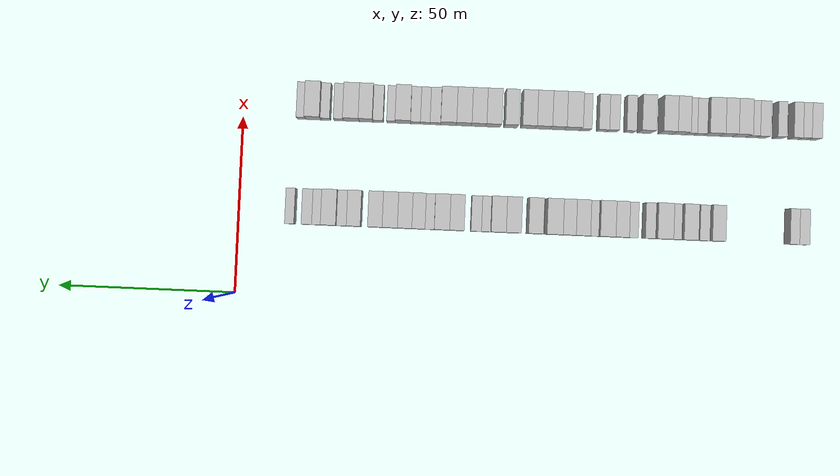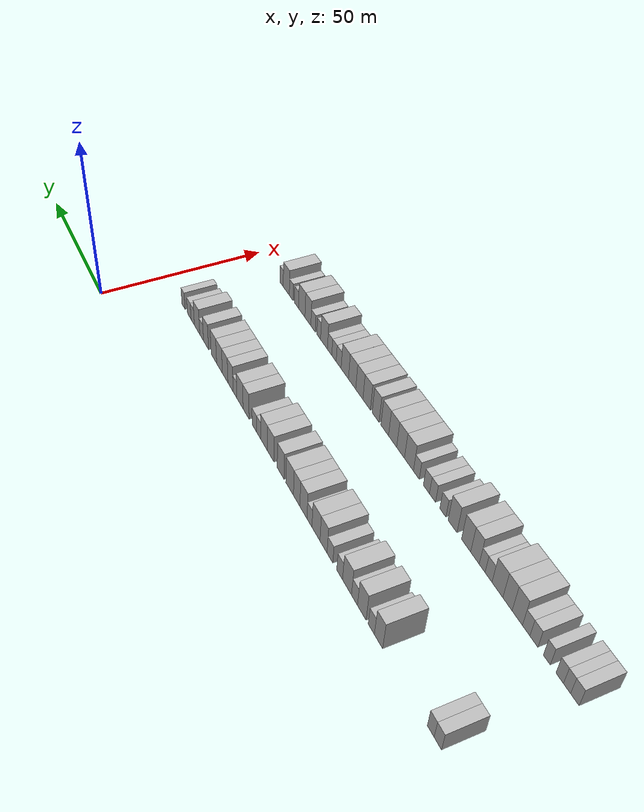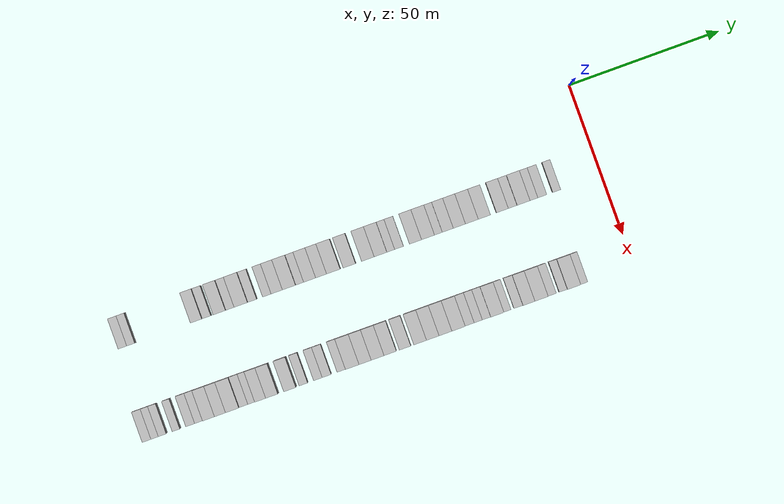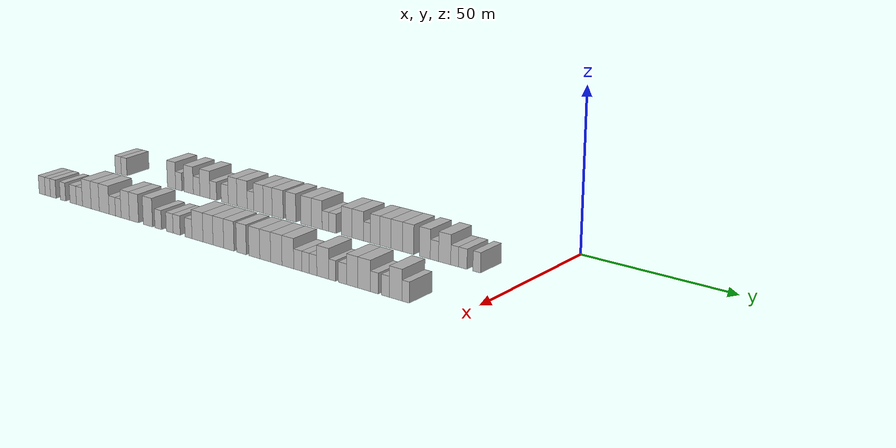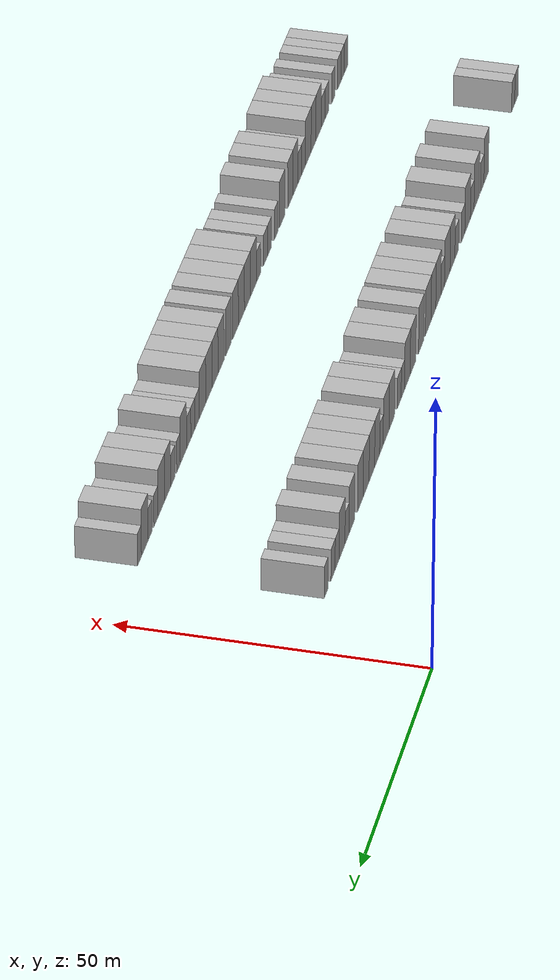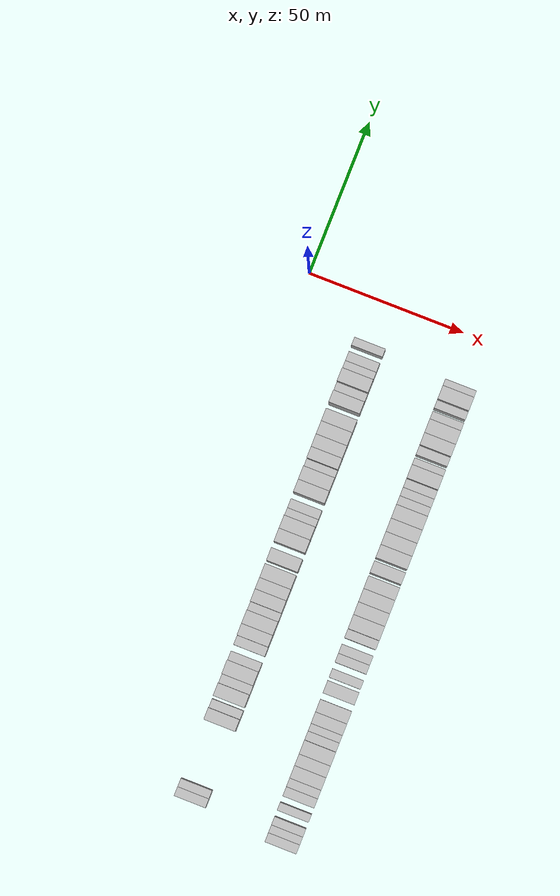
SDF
<sdf version="1.6">
 <world name="default">
  <model name="building_66">
   <static>1</static>
   <pose>25.0000 -159.3596 0 0.000000 0.000000 0.000000</pose>
   <link name="link">
    <pose>0 0 3.00 0 0 0</pose>
    <collision name="collision"><geometry><box><size>10.0000 2.8580 6.0000</size></box></geometry></collision>
    <visual name="visual">
     <cast_shadows>0</cast_shadows>
     <geometry><box><size>10.0000 2.8580 6.0000</size></box></geometry>
     <material>
      <script>
       <uri>model://HANNAS_wall/materials/scripts</uri>
       <uri>model://HANNAS_wall/materials/textures</uri>
       <name>vrc/HANNAS_wall</name>
      </script>
     </material>
    </visual>
   </link>
  </model>
  <model name="building_67">
   <static>1</static>
   <pose>25.0000 -156.6166 0 0.000000 0.000000 0.000000</pose>
   <link name="link">
    <pose>0 0 3.00 0 0 0</pose>
    <collision name="collision"><geometry><box><size>10.0000 2.6280 6.0000</size></box></geometry></collision>
    <visual name="visual">
     <cast_shadows>0</cast_shadows>
     <geometry><box><size>10.0000 2.6280 6.0000</size></box></geometry>
     <material>
      <script>
       <uri>model://HANNAS_wall/materials/scripts</uri>
       <uri>model://HANNAS_wall/materials/textures</uri>
       <name>vrc/HANNAS_wall</name>
      </script>
     </material>
    </visual>
   </link>
  </model>
  <model name="building_68">
   <static>1</static>
   <pose>25.0000 -134.7074 0 0.000000 0.000000 0.000000</pose>
   <link name="link">
    <pose>0 0 4.50 0 0 0</pose>
    <collision name="collision"><geometry><box><size>10.0000 3.7301 9.0000</size></box></geometry></collision>
    <visual name="visual">
     <cast_shadows>0</cast_shadows>
     <geometry><box><size>10.0000 3.7301 9.0000</size></box></geometry>
     <material>
      <script>
       <uri>model://HANNAS_wall/materials/scripts</uri>
       <uri>model://HANNAS_wall/materials/textures</uri>
       <name>vrc/HANNAS_wall</name>
      </script>
     </material>
    </visual>
   </link>
  </model>
  <model name="building_69">
   <static>1</static>
   <pose>25.0000 -131.4486 0 0.000000 0.000000 0.000000</pose>
   <link name="link">
    <pose>0 0 3.00 0 0 0</pose>
    <collision name="collision"><geometry><box><size>10.0000 2.7873 6.0000</size></box></geometry></collision>
    <visual name="visual">
     <cast_shadows>0</cast_shadows>
     <geometry><box><size>10.0000 2.7873 6.0000</size></box></geometry>
     <material>
      <script>
       <uri>model://HANNAS_wall/materials/scripts</uri>
       <uri>model://HANNAS_wall/materials/textures</uri>
       <name>vrc/HANNAS_wall</name>
      </script>
     </material>
    </visual>
   </link>
  </model>
  <model name="building_70">
   <static>1</static>
   <pose>25.0000 -127.0258 0 0.000000 0.000000 0.000000</pose>
   <link name="link">
    <pose>0 0 4.50 0 0 0</pose>
    <collision name="collision"><geometry><box><size>10.0000 4.0583 9.0000</size></box></geometry></collision>
    <visual name="visual">
     <cast_shadows>0</cast_shadows>
     <geometry><box><size>10.0000 4.0583 9.0000</size></box></geometry>
     <material>
      <script>
       <uri>model://HANNAS_wall/materials/scripts</uri>
       <uri>model://HANNAS_wall/materials/textures</uri>
       <name>vrc/HANNAS_wall</name>
      </script>
     </material>
    </visual>
   </link>
  </model>
  <model name="building_71">
   <static>1</static>
   <pose>25.0000 -123.5500 0 0.000000 0.000000 0.000000</pose>
   <link name="link">
    <pose>0 0 3.00 0 0 0</pose>
    <collision name="collision"><geometry><box><size>10.0000 2.8934 6.0000</size></box></geometry></collision>
    <visual name="visual">
     <cast_shadows>0</cast_shadows>
     <geometry><box><size>10.0000 2.8934 6.0000</size></box></geometry>
     <material>
      <script>
       <uri>model://HANNAS_wall/materials/scripts</uri>
       <uri>model://HANNAS_wall/materials/textures</uri>
       <name>vrc/HANNAS_wall</name>
      </script>
     </material>
    </visual>
   </link>
  </model>
  <model name="building_72">
   <static>1</static>
   <pose>25.0000 -119.9014 0 0.000000 0.000000 0.000000</pose>
   <link name="link">
    <pose>0 0 4.50 0 0 0</pose>
    <collision name="collision"><geometry><box><size>10.0000 4.4038 9.0000</size></box></geometry></collision>
    <visual name="visual">
     <cast_shadows>0</cast_shadows>
     <geometry><box><size>10.0000 4.4038 9.0000</size></box></geometry>
     <material>
      <script>
       <uri>model://HANNAS_wall/materials/scripts</uri>
       <uri>model://HANNAS_wall/materials/textures</uri>
       <name>vrc/HANNAS_wall</name>
      </script>
     </material>
    </visual>
   </link>
  </model>
  <model name="building_73">
   <static>1</static>
   <pose>25.0000 -116.2628 0 0.000000 0.000000 0.000000</pose>
   <link name="link">
    <pose>0 0 3.00 0 0 0</pose>
    <collision name="collision"><geometry><box><size>10.0000 2.8733 6.0000</size></box></geometry></collision>
    <visual name="visual">
     <cast_shadows>0</cast_shadows>
     <geometry><box><size>10.0000 2.8733 6.0000</size></box></geometry>
     <material>
      <script>
       <uri>model://HANNAS_wall/materials/scripts</uri>
       <uri>model://HANNAS_wall/materials/textures</uri>
       <name>vrc/HANNAS_wall</name>
      </script>
     </material>
    </visual>
   </link>
  </model>
  <model name="building_74">
   <static>1</static>
   <pose>25.0000 -111.3329 0 0.000000 0.000000 0.000000</pose>
   <link name="link">
    <pose>0 0 3.00 0 0 0</pose>
    <collision name="collision"><geometry><box><size>10.0000 2.9865 6.0000</size></box></geometry></collision>
    <visual name="visual">
     <cast_shadows>0</cast_shadows>
     <geometry><box><size>10.0000 2.9865 6.0000</size></box></geometry>
     <material>
      <script>
       <uri>model://HANNAS_wall/materials/scripts</uri>
       <uri>model://HANNAS_wall/materials/textures</uri>
       <name>vrc/HANNAS_wall</name>
      </script>
     </material>
    </visual>
   </link>
  </model>
  <model name="building_75">
   <static>1</static>
   <pose>25.0000 -107.9722 0 0.000000 0.000000 0.000000</pose>
   <link name="link">
    <pose>0 0 4.50 0 0 0</pose>
    <collision name="collision"><geometry><box><size>10.0000 3.7350 9.0000</size></box></geometry></collision>
    <visual name="visual">
     <cast_shadows>0</cast_shadows>
     <geometry><box><size>10.0000 3.7350 9.0000</size></box></geometry>
     <material>
      <script>
       <uri>model://HANNAS_wall/materials/scripts</uri>
       <uri>model://HANNAS_wall/materials/textures</uri>
       <name>vrc/HANNAS_wall</name>
      </script>
     </material>
    </visual>
   </link>
  </model>
  <model name="building_76">
   <static>1</static>
   <pose>25.0000 -103.9499 0 0.000000 0.000000 0.000000</pose>
   <link name="link">
    <pose>0 0 4.50 0 0 0</pose>
    <collision name="collision"><geometry><box><size>10.0000 4.3096 9.0000</size></box></geometry></collision>
    <visual name="visual">
     <cast_shadows>0</cast_shadows>
     <geometry><box><size>10.0000 4.3096 9.0000</size></box></geometry>
     <material>
      <script>
       <uri>model://HANNAS_wall/materials/scripts</uri>
       <uri>model://HANNAS_wall/materials/textures</uri>
       <name>vrc/HANNAS_wall</name>
      </script>
     </material>
    </visual>
   </link>
  </model>
  <model name="building_77">
   <static>1</static>
   <pose>25.0000 -100.4356 0 0.000000 0.000000 0.000000</pose>
   <link name="link">
    <pose>0 0 3.00 0 0 0</pose>
    <collision name="collision"><geometry><box><size>10.0000 2.7190 6.0000</size></box></geometry></collision>
    <visual name="visual">
     <cast_shadows>0</cast_shadows>
     <geometry><box><size>10.0000 2.7190 6.0000</size></box></geometry>
     <material>
      <script>
       <uri>model://HANNAS_wall/materials/scripts</uri>
       <uri>model://HANNAS_wall/materials/textures</uri>
       <name>vrc/HANNAS_wall</name>
      </script>
     </material>
    </visual>
   </link>
  </model>
  <model name="building_78">
   <static>1</static>
   <pose>25.0000 -97.0881 0 0.000000 0.000000 0.000000</pose>
   <link name="link">
    <pose>0 0 4.50 0 0 0</pose>
    <collision name="collision"><geometry><box><size>10.0000 3.9760 9.0000</size></box></geometry></collision>
    <visual name="visual">
     <cast_shadows>0</cast_shadows>
     <geometry><box><size>10.0000 3.9760 9.0000</size></box></geometry>
     <material>
      <script>
       <uri>model://HANNAS_wall/materials/scripts</uri>
       <uri>model://HANNAS_wall/materials/textures</uri>
       <name>vrc/HANNAS_wall</name>
      </script>
     </material>
    </visual>
   </link>
  </model>
  <model name="building_79">
   <static>1</static>
   <pose>25.0000 -93.2928 0 0.000000 0.000000 0.000000</pose>
   <link name="link">
    <pose>0 0 4.50 0 0 0</pose>
    <collision name="collision"><geometry><box><size>10.0000 3.6146 9.0000</size></box></geometry></collision>
    <visual name="visual">
     <cast_shadows>0</cast_shadows>
     <geometry><box><size>10.0000 3.6146 9.0000</size></box></geometry>
     <material>
      <script>
       <uri>model://HANNAS_wall/materials/scripts</uri>
       <uri>model://HANNAS_wall/materials/textures</uri>
       <name>vrc/HANNAS_wall</name>
      </script>
     </material>
    </visual>
   </link>
  </model>
  <model name="building_80">
   <static>1</static>
   <pose>25.0000 -89.2456 0 0.000000 0.000000 0.000000</pose>
   <link name="link">
    <pose>0 0 4.50 0 0 0</pose>
    <collision name="collision"><geometry><box><size>10.0000 4.4797 9.0000</size></box></geometry></collision>
    <visual name="visual">
     <cast_shadows>0</cast_shadows>
     <geometry><box><size>10.0000 4.4797 9.0000</size></box></geometry>
     <material>
      <script>
       <uri>model://HANNAS_wall/materials/scripts</uri>
       <uri>model://HANNAS_wall/materials/textures</uri>
       <name>vrc/HANNAS_wall</name>
      </script>
     </material>
    </visual>
   </link>
  </model>
  <model name="building_81">
   <static>1</static>
   <pose>25.0000 -83.9541 0 0.000000 0.000000 0.000000</pose>
   <link name="link">
    <pose>0 0 4.50 0 0 0</pose>
    <collision name="collision"><geometry><box><size>10.0000 4.1032 9.0000</size></box></geometry></collision>
    <visual name="visual">
     <cast_shadows>0</cast_shadows>
     <geometry><box><size>10.0000 4.1032 9.0000</size></box></geometry>
     <material>
      <script>
       <uri>model://HANNAS_wall/materials/scripts</uri>
       <uri>model://HANNAS_wall/materials/textures</uri>
       <name>vrc/HANNAS_wall</name>
      </script>
     </material>
    </visual>
   </link>
  </model>
  <model name="building_82">
   <static>1</static>
   <pose>25.0000 -77.8062 0 0.000000 0.000000 0.000000</pose>
   <link name="link">
    <pose>0 0 4.50 0 0 0</pose>
    <collision name="collision"><geometry><box><size>10.0000 4.1927 9.0000</size></box></geometry></collision>
    <visual name="visual">
     <cast_shadows>0</cast_shadows>
     <geometry><box><size>10.0000 4.1927 9.0000</size></box></geometry>
     <material>
      <script>
       <uri>model://HANNAS_wall/materials/scripts</uri>
       <uri>model://HANNAS_wall/materials/textures</uri>
       <name>vrc/HANNAS_wall</name>
      </script>
     </material>
    </visual>
   </link>
  </model>
  <model name="building_83">
   <static>1</static>
   <pose>25.0000 -73.6190 0 0.000000 0.000000 0.000000</pose>
   <link name="link">
    <pose>0 0 4.50 0 0 0</pose>
    <collision name="collision"><geometry><box><size>10.0000 4.1817 9.0000</size></box></geometry></collision>
    <visual name="visual">
     <cast_shadows>0</cast_shadows>
     <geometry><box><size>10.0000 4.1817 9.0000</size></box></geometry>
     <material>
      <script>
       <uri>model://HANNAS_wall/materials/scripts</uri>
       <uri>model://HANNAS_wall/materials/textures</uri>
       <name>vrc/HANNAS_wall</name>
      </script>
     </material>
    </visual>
   </link>
  </model>
  <model name="building_84">
   <static>1</static>
   <pose>25.0000 -70.2472 0 0.000000 0.000000 0.000000</pose>
   <link name="link">
    <pose>0 0 3.00 0 0 0</pose>
    <collision name="collision"><geometry><box><size>10.0000 2.5617 6.0000</size></box></geometry></collision>
    <visual name="visual">
     <cast_shadows>0</cast_shadows>
     <geometry><box><size>10.0000 2.5617 6.0000</size></box></geometry>
     <material>
      <script>
       <uri>model://HANNAS_wall/materials/scripts</uri>
       <uri>model://HANNAS_wall/materials/textures</uri>
       <name>vrc/HANNAS_wall</name>
      </script>
     </material>
    </visual>
   </link>
  </model>
  <model name="building_85">
   <static>1</static>
   <pose>25.0000 -67.5043 0 0.000000 0.000000 0.000000</pose>
   <link name="link">
    <pose>0 0 3.00 0 0 0</pose>
    <collision name="collision"><geometry><box><size>10.0000 2.9242 6.0000</size></box></geometry></collision>
    <visual name="visual">
     <cast_shadows>0</cast_shadows>
     <geometry><box><size>10.0000 2.9242 6.0000</size></box></geometry>
     <material>
      <script>
       <uri>model://HANNAS_wall/materials/scripts</uri>
       <uri>model://HANNAS_wall/materials/textures</uri>
       <name>vrc/HANNAS_wall</name>
      </script>
     </material>
    </visual>
   </link>
  </model>
  <model name="building_86">
   <static>1</static>
   <pose>25.0000 -62.0273 0 0.000000 0.000000 0.000000</pose>
   <link name="link">
    <pose>0 0 4.50 0 0 0</pose>
    <collision name="collision"><geometry><box><size>10.0000 4.0299 9.0000</size></box></geometry></collision>
    <visual name="visual">
     <cast_shadows>0</cast_shadows>
     <geometry><box><size>10.0000 4.0299 9.0000</size></box></geometry>
     <material>
      <script>
       <uri>model://HANNAS_wall/materials/scripts</uri>
       <uri>model://HANNAS_wall/materials/textures</uri>
       <name>vrc/HANNAS_wall</name>
      </script>
     </material>
    </visual>
   </link>
  </model>
  <model name="building_87">
   <static>1</static>
   <pose>25.0000 -57.8725 0 0.000000 0.000000 0.000000</pose>
   <link name="link">
    <pose>0 0 4.50 0 0 0</pose>
    <collision name="collision"><geometry><box><size>10.0000 4.2796 9.0000</size></box></geometry></collision>
    <visual name="visual">
     <cast_shadows>0</cast_shadows>
     <geometry><box><size>10.0000 4.2796 9.0000</size></box></geometry>
     <material>
      <script>
       <uri>model://HANNAS_wall/materials/scripts</uri>
       <uri>model://HANNAS_wall/materials/textures</uri>
       <name>vrc/HANNAS_wall</name>
      </script>
     </material>
    </visual>
   </link>
  </model>
  <model name="building_88">
   <static>1</static>
   <pose>25.0000 -54.4434 0 0.000000 0.000000 0.000000</pose>
   <link name="link">
    <pose>0 0 3.00 0 0 0</pose>
    <collision name="collision"><geometry><box><size>10.0000 2.5786 6.0000</size></box></geometry></collision>
    <visual name="visual">
     <cast_shadows>0</cast_shadows>
     <geometry><box><size>10.0000 2.5786 6.0000</size></box></geometry>
     <material>
      <script>
       <uri>model://HANNAS_wall/materials/scripts</uri>
       <uri>model://HANNAS_wall/materials/textures</uri>
       <name>vrc/HANNAS_wall</name>
      </script>
     </material>
    </visual>
   </link>
  </model>
  <model name="building_89">
   <static>1</static>
   <pose>25.0000 -51.3265 0 0.000000 0.000000 0.000000</pose>
   <link name="link">
    <pose>0 0 4.50 0 0 0</pose>
    <collision name="collision"><geometry><box><size>10.0000 3.6554 9.0000</size></box></geometry></collision>
    <visual name="visual">
     <cast_shadows>0</cast_shadows>
     <geometry><box><size>10.0000 3.6554 9.0000</size></box></geometry>
     <material>
      <script>
       <uri>model://HANNAS_wall/materials/scripts</uri>
       <uri>model://HANNAS_wall/materials/textures</uri>
       <name>vrc/HANNAS_wall</name>
      </script>
     </material>
    </visual>
   </link>
  </model>
  <model name="building_90">
   <static>1</static>
   <pose>25.0000 -47.4925 0 0.000000 0.000000 0.000000</pose>
   <link name="link">
    <pose>0 0 4.50 0 0 0</pose>
    <collision name="collision"><geometry><box><size>10.0000 4.0127 9.0000</size></box></geometry></collision>
    <visual name="visual">
     <cast_shadows>0</cast_shadows>
     <geometry><box><size>10.0000 4.0127 9.0000</size></box></geometry>
     <material>
      <script>
       <uri>model://HANNAS_wall/materials/scripts</uri>
       <uri>model://HANNAS_wall/materials/textures</uri>
       <name>vrc/HANNAS_wall</name>
      </script>
     </material>
    </visual>
   </link>
  </model>
  <model name="building_91">
   <static>1</static>
   <pose>25.0000 -43.3657 0 0.000000 0.000000 0.000000</pose>
   <link name="link">
    <pose>0 0 4.50 0 0 0</pose>
    <collision name="collision"><geometry><box><size>10.0000 4.2408 9.0000</size></box></geometry></collision>
    <visual name="visual">
     <cast_shadows>0</cast_shadows>
     <geometry><box><size>10.0000 4.2408 9.0000</size></box></geometry>
     <material>
      <script>
       <uri>model://HANNAS_wall/materials/scripts</uri>
       <uri>model://HANNAS_wall/materials/textures</uri>
       <name>vrc/HANNAS_wall</name>
      </script>
     </material>
    </visual>
   </link>
  </model>
  <model name="building_92">
   <static>1</static>
   <pose>25.0000 -39.2170 0 0.000000 0.000000 0.000000</pose>
   <link name="link">
    <pose>0 0 4.50 0 0 0</pose>
    <collision name="collision"><geometry><box><size>10.0000 4.0567 9.0000</size></box></geometry></collision>
    <visual name="visual">
     <cast_shadows>0</cast_shadows>
     <geometry><box><size>10.0000 4.0567 9.0000</size></box></geometry>
     <material>
      <script>
       <uri>model://HANNAS_wall/materials/scripts</uri>
       <uri>model://HANNAS_wall/materials/textures</uri>
       <name>vrc/HANNAS_wall</name>
      </script>
     </material>
    </visual>
   </link>
  </model>
  <model name="building_93">
   <static>1</static>
   <pose>25.0000 -33.2435 0 0.000000 0.000000 0.000000</pose>
   <link name="link">
    <pose>0 0 4.50 0 0 0</pose>
    <collision name="collision"><geometry><box><size>10.0000 3.8904 9.0000</size></box></geometry></collision>
    <visual name="visual">
     <cast_shadows>0</cast_shadows>
     <geometry><box><size>10.0000 3.8904 9.0000</size></box></geometry>
     <material>
      <script>
       <uri>model://HANNAS_wall/materials/scripts</uri>
       <uri>model://HANNAS_wall/materials/textures</uri>
       <name>vrc/HANNAS_wall</name>
      </script>
     </material>
    </visual>
   </link>
  </model>
  <model name="building_94">
   <static>1</static>
   <pose>25.0000 -29.8261 0 0.000000 0.000000 0.000000</pose>
   <link name="link">
    <pose>0 0 3.00 0 0 0</pose>
    <collision name="collision"><geometry><box><size>10.0000 2.9443 6.0000</size></box></geometry></collision>
    <visual name="visual">
     <cast_shadows>0</cast_shadows>
     <geometry><box><size>10.0000 2.9443 6.0000</size></box></geometry>
     <material>
      <script>
       <uri>model://HANNAS_wall/materials/scripts</uri>
       <uri>model://HANNAS_wall/materials/textures</uri>
       <name>vrc/HANNAS_wall</name>
      </script>
     </material>
    </visual>
   </link>
  </model>
  <model name="building_95">
   <static>1</static>
   <pose>25.0000 -26.2282 0 0.000000 0.000000 0.000000</pose>
   <link name="link">
    <pose>0 0 4.50 0 0 0</pose>
    <collision name="collision"><geometry><box><size>10.0000 4.2514 9.0000</size></box></geometry></collision>
    <visual name="visual">
     <cast_shadows>0</cast_shadows>
     <geometry><box><size>10.0000 4.2514 9.0000</size></box></geometry>
     <material>
      <script>
       <uri>model://HANNAS_wall/materials/scripts</uri>
       <uri>model://HANNAS_wall/materials/textures</uri>
       <name>vrc/HANNAS_wall</name>
      </script>
     </material>
    </visual>
   </link>
  </model>
  <model name="building_96">
   <static>1</static>
   <pose>25.0000 -22.7592 0 0.000000 0.000000 0.000000</pose>
   <link name="link">
    <pose>0 0 3.00 0 0 0</pose>
    <collision name="collision"><geometry><box><size>10.0000 2.6866 6.0000</size></box></geometry></collision>
    <visual name="visual">
     <cast_shadows>0</cast_shadows>
     <geometry><box><size>10.0000 2.6866 6.0000</size></box></geometry>
     <material>
      <script>
       <uri>model://HANNAS_wall/materials/scripts</uri>
       <uri>model://HANNAS_wall/materials/textures</uri>
       <name>vrc/HANNAS_wall</name>
      </script>
     </material>
    </visual>
   </link>
  </model>
  <model name="building_97">
   <static>1</static>
   <pose>25.0000 -19.9322 0 0.000000 0.000000 0.000000</pose>
   <link name="link">
    <pose>0 0 3.00 0 0 0</pose>
    <collision name="collision"><geometry><box><size>10.0000 2.9674 6.0000</size></box></geometry></collision>
    <visual name="visual">
     <cast_shadows>0</cast_shadows>
     <geometry><box><size>10.0000 2.9674 6.0000</size></box></geometry>
     <material>
      <script>
       <uri>model://HANNAS_wall/materials/scripts</uri>
       <uri>model://HANNAS_wall/materials/textures</uri>
       <name>vrc/HANNAS_wall</name>
      </script>
     </material>
    </visual>
   </link>
  </model>
  <model name="building_98">
   <static>1</static>
   <pose>25.0000 -15.1394 0 0.000000 0.000000 0.000000</pose>
   <link name="link">
    <pose>0 0 3.00 0 0 0</pose>
    <collision name="collision"><geometry><box><size>10.0000 2.6182 6.0000</size></box></geometry></collision>
    <visual name="visual">
     <cast_shadows>0</cast_shadows>
     <geometry><box><size>10.0000 2.6182 6.0000</size></box></geometry>
     <material>
      <script>
       <uri>model://HANNAS_wall/materials/scripts</uri>
       <uri>model://HANNAS_wall/materials/textures</uri>
       <name>vrc/HANNAS_wall</name>
      </script>
     </material>
    </visual>
   </link>
  </model>
  <model name="building_299">
   <static>1</static>
   <pose>55.0000 -162.1643 0 0.000000 0.000000 0.000000</pose>
   <link name="link">
    <pose>0 0 3.00 0 0 0</pose>
    <collision name="collision"><geometry><box><size>10.0000 2.8964 6.0000</size></box></geometry></collision>
    <visual name="visual">
     <cast_shadows>0</cast_shadows>
     <geometry><box><size>10.0000 2.8964 6.0000</size></box></geometry>
     <material>
      <script>
       <uri>model://HANNAS_wall/materials/scripts</uri>
       <uri>model://HANNAS_wall/materials/textures</uri>
       <name>vrc/HANNAS_wall</name>
      </script>
     </material>
    </visual>
   </link>
  </model>
  <model name="building_300">
   <static>1</static>
   <pose>55.0000 -159.4904 0 0.000000 0.000000 0.000000</pose>
   <link name="link">
    <pose>0 0 3.00 0 0 0</pose>
    <collision name="collision"><geometry><box><size>10.0000 2.4514 6.0000</size></box></geometry></collision>
    <visual name="visual">
     <cast_shadows>0</cast_shadows>
     <geometry><box><size>10.0000 2.4514 6.0000</size></box></geometry>
     <material>
      <script>
       <uri>model://HANNAS_wall/materials/scripts</uri>
       <uri>model://HANNAS_wall/materials/textures</uri>
       <name>vrc/HANNAS_wall</name>
      </script>
     </material>
    </visual>
   </link>
  </model>
  <model name="building_301">
   <static>1</static>
   <pose>55.0000 -156.9581 0 0.000000 0.000000 0.000000</pose>
   <link name="link">
    <pose>0 0 3.00 0 0 0</pose>
    <collision name="collision"><geometry><box><size>10.0000 2.6132 6.0000</size></box></geometry></collision>
    <visual name="visual">
     <cast_shadows>0</cast_shadows>
     <geometry><box><size>10.0000 2.6132 6.0000</size></box></geometry>
     <material>
      <script>
       <uri>model://HANNAS_wall/materials/scripts</uri>
       <uri>model://HANNAS_wall/materials/textures</uri>
       <name>vrc/HANNAS_wall</name>
      </script>
     </material>
    </visual>
   </link>
  </model>
  <model name="building_302">
   <static>1</static>
   <pose>55.0000 -152.3976 0 0.000000 0.000000 0.000000</pose>
   <link name="link">
    <pose>0 0 3.00 0 0 0</pose>
    <collision name="collision"><geometry><box><size>10.0000 2.5078 6.0000</size></box></geometry></collision>
    <visual name="visual">
     <cast_shadows>0</cast_shadows>
     <geometry><box><size>10.0000 2.5078 6.0000</size></box></geometry>
     <material>
      <script>
       <uri>model://HANNAS_wall/materials/scripts</uri>
       <uri>model://HANNAS_wall/materials/textures</uri>
       <name>vrc/HANNAS_wall</name>
      </script>
     </material>
    </visual>
   </link>
  </model>
  <model name="building_303">
   <static>1</static>
   <pose>55.0000 -147.6664 0 0.000000 0.000000 0.000000</pose>
   <link name="link">
    <pose>0 0 3.00 0 0 0</pose>
    <collision name="collision"><geometry><box><size>10.0000 2.9547 6.0000</size></box></geometry></collision>
    <visual name="visual">
     <cast_shadows>0</cast_shadows>
     <geometry><box><size>10.0000 2.9547 6.0000</size></box></geometry>
     <material>
      <script>
       <uri>model://HANNAS_wall/materials/scripts</uri>
       <uri>model://HANNAS_wall/materials/textures</uri>
       <name>vrc/HANNAS_wall</name>
      </script>
     </material>
    </visual>
   </link>
  </model>
  <model name="building_304">
   <static>1</static>
   <pose>55.0000 -144.7800 0 0.000000 0.000000 0.000000</pose>
   <link name="link">
    <pose>0 0 3.00 0 0 0</pose>
    <collision name="collision"><geometry><box><size>10.0000 2.8181 6.0000</size></box></geometry></collision>
    <visual name="visual">
     <cast_shadows>0</cast_shadows>
     <geometry><box><size>10.0000 2.8181 6.0000</size></box></geometry>
     <material>
      <script>
       <uri>model://HANNAS_wall/materials/scripts</uri>
       <uri>model://HANNAS_wall/materials/textures</uri>
       <name>vrc/HANNAS_wall</name>
      </script>
     </material>
    </visual>
   </link>
  </model>
  <model name="building_305">
   <static>1</static>
   <pose>55.0000 -141.3882 0 0.000000 0.000000 0.000000</pose>
   <link name="link">
    <pose>0 0 4.50 0 0 0</pose>
    <collision name="collision"><geometry><box><size>10.0000 3.9655 9.0000</size></box></geometry></collision>
    <visual name="visual">
     <cast_shadows>0</cast_shadows>
     <geometry><box><size>10.0000 3.9655 9.0000</size></box></geometry>
     <material>
      <script>
       <uri>model://HANNAS_wall/materials/scripts</uri>
       <uri>model://HANNAS_wall/materials/textures</uri>
       <name>vrc/HANNAS_wall</name>
      </script>
     </material>
    </visual>
   </link>
  </model>
  <model name="building_306">
   <static>1</static>
   <pose>55.0000 -137.5795 0 0.000000 0.000000 0.000000</pose>
   <link name="link">
    <pose>0 0 4.50 0 0 0</pose>
    <collision name="collision"><geometry><box><size>10.0000 3.6520 9.0000</size></box></geometry></collision>
    <visual name="visual">
     <cast_shadows>0</cast_shadows>
     <geometry><box><size>10.0000 3.6520 9.0000</size></box></geometry>
     <material>
      <script>
       <uri>model://HANNAS_wall/materials/scripts</uri>
       <uri>model://HANNAS_wall/materials/textures</uri>
       <name>vrc/HANNAS_wall</name>
      </script>
     </material>
    </visual>
   </link>
  </model>
  <model name="building_307">
   <static>1</static>
   <pose>55.0000 -133.5691 0 0.000000 0.000000 0.000000</pose>
   <link name="link">
    <pose>0 0 4.50 0 0 0</pose>
    <collision name="collision"><geometry><box><size>10.0000 4.3687 9.0000</size></box></geometry></collision>
    <visual name="visual">
     <cast_shadows>0</cast_shadows>
     <geometry><box><size>10.0000 4.3687 9.0000</size></box></geometry>
     <material>
      <script>
       <uri>model://HANNAS_wall/materials/scripts</uri>
       <uri>model://HANNAS_wall/materials/textures</uri>
       <name>vrc/HANNAS_wall</name>
      </script>
     </material>
    </visual>
   </link>
  </model>
  <model name="building_308">
   <static>1</static>
   <pose>55.0000 -129.9648 0 0.000000 0.000000 0.000000</pose>
   <link name="link">
    <pose>0 0 3.00 0 0 0</pose>
    <collision name="collision"><geometry><box><size>10.0000 2.8400 6.0000</size></box></geometry></collision>
    <visual name="visual">
     <cast_shadows>0</cast_shadows>
     <geometry><box><size>10.0000 2.8400 6.0000</size></box></geometry>
     <material>
      <script>
       <uri>model://HANNAS_wall/materials/scripts</uri>
       <uri>model://HANNAS_wall/materials/textures</uri>
       <name>vrc/HANNAS_wall</name>
      </script>
     </material>
    </visual>
   </link>
  </model>
  <model name="building_309">
   <static>1</static>
   <pose>55.0000 -127.3156 0 0.000000 0.000000 0.000000</pose>
   <link name="link">
    <pose>0 0 3.00 0 0 0</pose>
    <collision name="collision"><geometry><box><size>10.0000 2.4582 6.0000</size></box></geometry></collision>
    <visual name="visual">
     <cast_shadows>0</cast_shadows>
     <geometry><box><size>10.0000 2.4582 6.0000</size></box></geometry>
     <material>
      <script>
       <uri>model://HANNAS_wall/materials/scripts</uri>
       <uri>model://HANNAS_wall/materials/textures</uri>
       <name>vrc/HANNAS_wall</name>
      </script>
     </material>
    </visual>
   </link>
  </model>
  <model name="building_310">
   <static>1</static>
   <pose>55.0000 -124.2713 0 0.000000 0.000000 0.000000</pose>
   <link name="link">
    <pose>0 0 4.50 0 0 0</pose>
    <collision name="collision"><geometry><box><size>10.0000 3.6304 9.0000</size></box></geometry></collision>
    <visual name="visual">
     <cast_shadows>0</cast_shadows>
     <geometry><box><size>10.0000 3.6304 9.0000</size></box></geometry>
     <material>
      <script>
       <uri>model://HANNAS_wall/materials/scripts</uri>
       <uri>model://HANNAS_wall/materials/textures</uri>
       <name>vrc/HANNAS_wall</name>
      </script>
     </material>
    </visual>
   </link>
  </model>
  <model name="building_311">
   <static>1</static>
   <pose>55.0000 -120.4664 0 0.000000 0.000000 0.000000</pose>
   <link name="link">
    <pose>0 0 4.50 0 0 0</pose>
    <collision name="collision"><geometry><box><size>10.0000 3.9793 9.0000</size></box></geometry></collision>
    <visual name="visual">
     <cast_shadows>0</cast_shadows>
     <geometry><box><size>10.0000 3.9793 9.0000</size></box></geometry>
     <material>
      <script>
       <uri>model://HANNAS_wall/materials/scripts</uri>
       <uri>model://HANNAS_wall/materials/textures</uri>
       <name>vrc/HANNAS_wall</name>
      </script>
     </material>
    </visual>
   </link>
  </model>
  <model name="building_312">
   <static>1</static>
   <pose>55.0000 -114.4891 0 0.000000 0.000000 0.000000</pose>
   <link name="link">
    <pose>0 0 4.50 0 0 0</pose>
    <collision name="collision"><geometry><box><size>10.0000 3.9755 9.0000</size></box></geometry></collision>
    <visual name="visual">
     <cast_shadows>0</cast_shadows>
     <geometry><box><size>10.0000 3.9755 9.0000</size></box></geometry>
     <material>
      <script>
       <uri>model://HANNAS_wall/materials/scripts</uri>
       <uri>model://HANNAS_wall/materials/textures</uri>
       <name>vrc/HANNAS_wall</name>
      </script>
     </material>
    </visual>
   </link>
  </model>
  <model name="building_313">
   <static>1</static>
   <pose>55.0000 -110.0973 0 0.000000 0.000000 0.000000</pose>
   <link name="link">
    <pose>0 0 3.00 0 0 0</pose>
    <collision name="collision"><geometry><box><size>10.0000 2.8081 6.0000</size></box></geometry></collision>
    <visual name="visual">
     <cast_shadows>0</cast_shadows>
     <geometry><box><size>10.0000 2.8081 6.0000</size></box></geometry>
     <material>
      <script>
       <uri>model://HANNAS_wall/materials/scripts</uri>
       <uri>model://HANNAS_wall/materials/textures</uri>
       <name>vrc/HANNAS_wall</name>
      </script>
     </material>
    </visual>
   </link>
  </model>
  <model name="building_314">
   <static>1</static>
   <pose>55.0000 -105.2622 0 0.000000 0.000000 0.000000</pose>
   <link name="link">
    <pose>0 0 3.00 0 0 0</pose>
    <collision name="collision"><geometry><box><size>10.0000 2.8620 6.0000</size></box></geometry></collision>
    <visual name="visual">
     <cast_shadows>0</cast_shadows>
     <geometry><box><size>10.0000 2.8620 6.0000</size></box></geometry>
     <material>
      <script>
       <uri>model://HANNAS_wall/materials/scripts</uri>
       <uri>model://HANNAS_wall/materials/textures</uri>
       <name>vrc/HANNAS_wall</name>
      </script>
     </material>
    </visual>
   </link>
  </model>
  <model name="building_315">
   <static>1</static>
   <pose>55.0000 -102.3670 0 0.000000 0.000000 0.000000</pose>
   <link name="link">
    <pose>0 0 3.00 0 0 0</pose>
    <collision name="collision"><geometry><box><size>10.0000 2.9283 6.0000</size></box></geometry></collision>
    <visual name="visual">
     <cast_shadows>0</cast_shadows>
     <geometry><box><size>10.0000 2.9283 6.0000</size></box></geometry>
     <material>
      <script>
       <uri>model://HANNAS_wall/materials/scripts</uri>
       <uri>model://HANNAS_wall/materials/textures</uri>
       <name>vrc/HANNAS_wall</name>
      </script>
     </material>
    </visual>
   </link>
  </model>
  <model name="building_316">
   <static>1</static>
   <pose>55.0000 -97.4725 0 0.000000 0.000000 0.000000</pose>
   <link name="link">
    <pose>0 0 3.00 0 0 0</pose>
    <collision name="collision"><geometry><box><size>10.0000 2.8606 6.0000</size></box></geometry></collision>
    <visual name="visual">
     <cast_shadows>0</cast_shadows>
     <geometry><box><size>10.0000 2.8606 6.0000</size></box></geometry>
     <material>
      <script>
       <uri>model://HANNAS_wall/materials/scripts</uri>
       <uri>model://HANNAS_wall/materials/textures</uri>
       <name>vrc/HANNAS_wall</name>
      </script>
     </material>
    </visual>
   </link>
  </model>
  <model name="building_317">
   <static>1</static>
   <pose>55.0000 -93.7926 0 0.000000 0.000000 0.000000</pose>
   <link name="link">
    <pose>0 0 4.50 0 0 0</pose>
    <collision name="collision"><geometry><box><size>10.0000 4.4993 9.0000</size></box></geometry></collision>
    <visual name="visual">
     <cast_shadows>0</cast_shadows>
     <geometry><box><size>10.0000 4.4993 9.0000</size></box></geometry>
     <material>
      <script>
       <uri>model://HANNAS_wall/materials/scripts</uri>
       <uri>model://HANNAS_wall/materials/textures</uri>
       <name>vrc/HANNAS_wall</name>
      </script>
     </material>
    </visual>
   </link>
  </model>
  <model name="building_318">
   <static>1</static>
   <pose>55.0000 -89.5281 0 0.000000 0.000000 0.000000</pose>
   <link name="link">
    <pose>0 0 4.50 0 0 0</pose>
    <collision name="collision"><geometry><box><size>10.0000 4.0297 9.0000</size></box></geometry></collision>
    <visual name="visual">
     <cast_shadows>0</cast_shadows>
     <geometry><box><size>10.0000 4.0297 9.0000</size></box></geometry>
     <material>
      <script>
       <uri>model://HANNAS_wall/materials/scripts</uri>
       <uri>model://HANNAS_wall/materials/textures</uri>
       <name>vrc/HANNAS_wall</name>
      </script>
     </material>
    </visual>
   </link>
  </model>
  <model name="building_319">
   <static>1</static>
   <pose>55.0000 -85.3846 0 0.000000 0.000000 0.000000</pose>
   <link name="link">
    <pose>0 0 4.50 0 0 0</pose>
    <collision name="collision"><geometry><box><size>10.0000 4.2573 9.0000</size></box></geometry></collision>
    <visual name="visual">
     <cast_shadows>0</cast_shadows>
     <geometry><box><size>10.0000 4.2573 9.0000</size></box></geometry>
     <material>
      <script>
       <uri>model://HANNAS_wall/materials/scripts</uri>
       <uri>model://HANNAS_wall/materials/textures</uri>
       <name>vrc/HANNAS_wall</name>
      </script>
     </material>
    </visual>
   </link>
  </model>
  <model name="building_320">
   <static>1</static>
   <pose>55.0000 -81.2257 0 0.000000 0.000000 0.000000</pose>
   <link name="link">
    <pose>0 0 4.50 0 0 0</pose>
    <collision name="collision"><geometry><box><size>10.0000 4.0604 9.0000</size></box></geometry></collision>
    <visual name="visual">
     <cast_shadows>0</cast_shadows>
     <geometry><box><size>10.0000 4.0604 9.0000</size></box></geometry>
     <material>
      <script>
       <uri>model://HANNAS_wall/materials/scripts</uri>
       <uri>model://HANNAS_wall/materials/textures</uri>
       <name>vrc/HANNAS_wall</name>
      </script>
     </material>
    </visual>
   </link>
  </model>
  <model name="building_321">
   <static>1</static>
   <pose>55.0000 -76.3016 0 0.000000 0.000000 0.000000</pose>
   <link name="link">
    <pose>0 0 4.50 0 0 0</pose>
    <collision name="collision"><geometry><box><size>10.0000 3.7878 9.0000</size></box></geometry></collision>
    <visual name="visual">
     <cast_shadows>0</cast_shadows>
     <geometry><box><size>10.0000 3.7878 9.0000</size></box></geometry>
     <material>
      <script>
       <uri>model://HANNAS_wall/materials/scripts</uri>
       <uri>model://HANNAS_wall/materials/textures</uri>
       <name>vrc/HANNAS_wall</name>
      </script>
     </material>
    </visual>
   </link>
  </model>
  <model name="building_322">
   <static>1</static>
   <pose>55.0000 -71.3012 0 0.000000 0.000000 0.000000</pose>
   <link name="link">
    <pose>0 0 4.50 0 0 0</pose>
    <collision name="collision"><geometry><box><size>10.0000 4.2131 9.0000</size></box></geometry></collision>
    <visual name="visual">
     <cast_shadows>0</cast_shadows>
     <geometry><box><size>10.0000 4.2131 9.0000</size></box></geometry>
     <material>
      <script>
       <uri>model://HANNAS_wall/materials/scripts</uri>
       <uri>model://HANNAS_wall/materials/textures</uri>
       <name>vrc/HANNAS_wall</name>
      </script>
     </material>
    </visual>
   </link>
  </model>
  <model name="building_323">
   <static>1</static>
   <pose>55.0000 -67.1192 0 0.000000 0.000000 0.000000</pose>
   <link name="link">
    <pose>0 0 4.50 0 0 0</pose>
    <collision name="collision"><geometry><box><size>10.0000 4.1510 9.0000</size></box></geometry></collision>
    <visual name="visual">
     <cast_shadows>0</cast_shadows>
     <geometry><box><size>10.0000 4.1510 9.0000</size></box></geometry>
     <material>
      <script>
       <uri>model://HANNAS_wall/materials/scripts</uri>
       <uri>model://HANNAS_wall/materials/textures</uri>
       <name>vrc/HANNAS_wall</name>
      </script>
     </material>
    </visual>
   </link>
  </model>
  <model name="building_324">
   <static>1</static>
   <pose>55.0000 -62.9147 0 0.000000 0.000000 0.000000</pose>
   <link name="link">
    <pose>0 0 4.50 0 0 0</pose>
    <collision name="collision"><geometry><box><size>10.0000 4.2581 9.0000</size></box></geometry></collision>
    <visual name="visual">
     <cast_shadows>0</cast_shadows>
     <geometry><box><size>10.0000 4.2581 9.0000</size></box></geometry>
     <material>
      <script>
       <uri>model://HANNAS_wall/materials/scripts</uri>
       <uri>model://HANNAS_wall/materials/textures</uri>
       <name>vrc/HANNAS_wall</name>
      </script>
     </material>
    </visual>
   </link>
  </model>
  <model name="building_325">
   <static>1</static>
   <pose>55.0000 -58.5797 0 0.000000 0.000000 0.000000</pose>
   <link name="link">
    <pose>0 0 4.50 0 0 0</pose>
    <collision name="collision"><geometry><box><size>10.0000 4.4118 9.0000</size></box></geometry></collision>
    <visual name="visual">
     <cast_shadows>0</cast_shadows>
     <geometry><box><size>10.0000 4.4118 9.0000</size></box></geometry>
     <material>
      <script>
       <uri>model://HANNAS_wall/materials/scripts</uri>
       <uri>model://HANNAS_wall/materials/textures</uri>
       <name>vrc/HANNAS_wall</name>
      </script>
     </material>
    </visual>
   </link>
  </model>
  <model name="building_326">
   <static>1</static>
   <pose>55.0000 -54.8756 0 0.000000 0.000000 0.000000</pose>
   <link name="link">
    <pose>0 0 3.00 0 0 0</pose>
    <collision name="collision"><geometry><box><size>10.0000 2.9965 6.0000</size></box></geometry></collision>
    <visual name="visual">
     <cast_shadows>0</cast_shadows>
     <geometry><box><size>10.0000 2.9965 6.0000</size></box></geometry>
     <material>
      <script>
       <uri>model://HANNAS_wall/materials/scripts</uri>
       <uri>model://HANNAS_wall/materials/textures</uri>
       <name>vrc/HANNAS_wall</name>
      </script>
     </material>
    </visual>
   </link>
  </model>
  <model name="building_327">
   <static>1</static>
   <pose>55.0000 -52.0185 0 0.000000 0.000000 0.000000</pose>
   <link name="link">
    <pose>0 0 3.00 0 0 0</pose>
    <collision name="collision"><geometry><box><size>10.0000 2.7176 6.0000</size></box></geometry></collision>
    <visual name="visual">
     <cast_shadows>0</cast_shadows>
     <geometry><box><size>10.0000 2.7176 6.0000</size></box></geometry>
     <material>
      <script>
       <uri>model://HANNAS_wall/materials/scripts</uri>
       <uri>model://HANNAS_wall/materials/textures</uri>
       <name>vrc/HANNAS_wall</name>
      </script>
     </material>
    </visual>
   </link>
  </model>
  <model name="building_328">
   <static>1</static>
   <pose>55.0000 -49.2804 0 0.000000 0.000000 0.000000</pose>
   <link name="link">
    <pose>0 0 3.00 0 0 0</pose>
    <collision name="collision"><geometry><box><size>10.0000 2.7587 6.0000</size></box></geometry></collision>
    <visual name="visual">
     <cast_shadows>0</cast_shadows>
     <geometry><box><size>10.0000 2.7587 6.0000</size></box></geometry>
     <material>
      <script>
       <uri>model://HANNAS_wall/materials/scripts</uri>
       <uri>model://HANNAS_wall/materials/textures</uri>
       <name>vrc/HANNAS_wall</name>
      </script>
     </material>
    </visual>
   </link>
  </model>
  <model name="building_329">
   <static>1</static>
   <pose>55.0000 -45.7320 0 0.000000 0.000000 0.000000</pose>
   <link name="link">
    <pose>0 0 4.50 0 0 0</pose>
    <collision name="collision"><geometry><box><size>10.0000 4.3379 9.0000</size></box></geometry></collision>
    <visual name="visual">
     <cast_shadows>0</cast_shadows>
     <geometry><box><size>10.0000 4.3379 9.0000</size></box></geometry>
     <material>
      <script>
       <uri>model://HANNAS_wall/materials/scripts</uri>
       <uri>model://HANNAS_wall/materials/textures</uri>
       <name>vrc/HANNAS_wall</name>
      </script>
     </material>
    </visual>
   </link>
  </model>
  <model name="building_330">
   <static>1</static>
   <pose>55.0000 -42.3521 0 0.000000 0.000000 0.000000</pose>
   <link name="link">
    <pose>0 0 3.00 0 0 0</pose>
    <collision name="collision"><geometry><box><size>10.0000 2.4221 6.0000</size></box></geometry></collision>
    <visual name="visual">
     <cast_shadows>0</cast_shadows>
     <geometry><box><size>10.0000 2.4221 6.0000</size></box></geometry>
     <material>
      <script>
       <uri>model://HANNAS_wall/materials/scripts</uri>
       <uri>model://HANNAS_wall/materials/textures</uri>
       <name>vrc/HANNAS_wall</name>
      </script>
     </material>
    </visual>
   </link>
  </model>
  <model name="building_331">
   <static>1</static>
   <pose>55.0000 -38.6806 0 0.000000 0.000000 0.000000</pose>
   <link name="link">
    <pose>0 0 3.00 0 0 0</pose>
    <collision name="collision"><geometry><box><size>10.0000 2.9208 6.0000</size></box></geometry></collision>
    <visual name="visual">
     <cast_shadows>0</cast_shadows>
     <geometry><box><size>10.0000 2.9208 6.0000</size></box></geometry>
     <material>
      <script>
       <uri>model://HANNAS_wall/materials/scripts</uri>
       <uri>model://HANNAS_wall/materials/textures</uri>
       <name>vrc/HANNAS_wall</name>
      </script>
     </material>
    </visual>
   </link>
  </model>
  <model name="building_332">
   <static>1</static>
   <pose>55.0000 -35.2567 0 0.000000 0.000000 0.000000</pose>
   <link name="link">
    <pose>0 0 4.50 0 0 0</pose>
    <collision name="collision"><geometry><box><size>10.0000 3.9270 9.0000</size></box></geometry></collision>
    <visual name="visual">
     <cast_shadows>0</cast_shadows>
     <geometry><box><size>10.0000 3.9270 9.0000</size></box></geometry>
     <material>
      <script>
       <uri>model://HANNAS_wall/materials/scripts</uri>
       <uri>model://HANNAS_wall/materials/textures</uri>
       <name>vrc/HANNAS_wall</name>
      </script>
     </material>
    </visual>
   </link>
  </model>
  <model name="building_333">
   <static>1</static>
   <pose>55.0000 -31.0950 0 0.000000 0.000000 0.000000</pose>
   <link name="link">
    <pose>0 0 4.50 0 0 0</pose>
    <collision name="collision"><geometry><box><size>10.0000 4.3965 9.0000</size></box></geometry></collision>
    <visual name="visual">
     <cast_shadows>0</cast_shadows>
     <geometry><box><size>10.0000 4.3965 9.0000</size></box></geometry>
     <material>
      <script>
       <uri>model://HANNAS_wall/materials/scripts</uri>
       <uri>model://HANNAS_wall/materials/textures</uri>
       <name>vrc/HANNAS_wall</name>
      </script>
     </material>
    </visual>
   </link>
  </model>
  <model name="building_334">
   <static>1</static>
   <pose>55.0000 -27.5015 0 0.000000 0.000000 0.000000</pose>
   <link name="link">
    <pose>0 0 3.00 0 0 0</pose>
    <collision name="collision"><geometry><box><size>10.0000 2.7905 6.0000</size></box></geometry></collision>
    <visual name="visual">
     <cast_shadows>0</cast_shadows>
     <geometry><box><size>10.0000 2.7905 6.0000</size></box></geometry>
     <material>
      <script>
       <uri>model://HANNAS_wall/materials/scripts</uri>
       <uri>model://HANNAS_wall/materials/textures</uri>
       <name>vrc/HANNAS_wall</name>
      </script>
     </material>
    </visual>
   </link>
  </model>
  <model name="building_335">
   <static>1</static>
   <pose>55.0000 -23.7873 0 0.000000 0.000000 0.000000</pose>
   <link name="link">
    <pose>0 0 3.00 0 0 0</pose>
    <collision name="collision"><geometry><box><size>10.0000 2.6379 6.0000</size></box></geometry></collision>
    <visual name="visual">
     <cast_shadows>0</cast_shadows>
     <geometry><box><size>10.0000 2.6379 6.0000</size></box></geometry>
     <material>
      <script>
       <uri>model://HANNAS_wall/materials/scripts</uri>
       <uri>model://HANNAS_wall/materials/textures</uri>
       <name>vrc/HANNAS_wall</name>
      </script>
     </material>
    </visual>
   </link>
  </model>
  <model name="building_336">
   <static>1</static>
   <pose>55.0000 -20.2865 0 0.000000 0.000000 0.000000</pose>
   <link name="link">
    <pose>0 0 4.50 0 0 0</pose>
    <collision name="collision"><geometry><box><size>10.0000 4.3637 9.0000</size></box></geometry></collision>
    <visual name="visual">
     <cast_shadows>0</cast_shadows>
     <geometry><box><size>10.0000 4.3637 9.0000</size></box></geometry>
     <material>
      <script>
       <uri>model://HANNAS_wall/materials/scripts</uri>
       <uri>model://HANNAS_wall/materials/textures</uri>
       <name>vrc/HANNAS_wall</name>
      </script>
     </material>
    </visual>
   </link>
  </model>
  <model name="building_337">
   <static>1</static>
   <pose>55.0000 -16.8804 0 0.000000 0.000000 0.000000</pose>
   <link name="link">
    <pose>0 0 3.00 0 0 0</pose>
    <collision name="collision"><geometry><box><size>10.0000 2.4484 6.0000</size></box></geometry></collision>
    <visual name="visual">
     <cast_shadows>0</cast_shadows>
     <geometry><box><size>10.0000 2.4484 6.0000</size></box></geometry>
     <material>
      <script>
       <uri>model://HANNAS_wall/materials/scripts</uri>
       <uri>model://HANNAS_wall/materials/textures</uri>
       <name>vrc/HANNAS_wall</name>
      </script>
     </material>
    </visual>
   </link>
  </model>
 </world>
</sdf>
